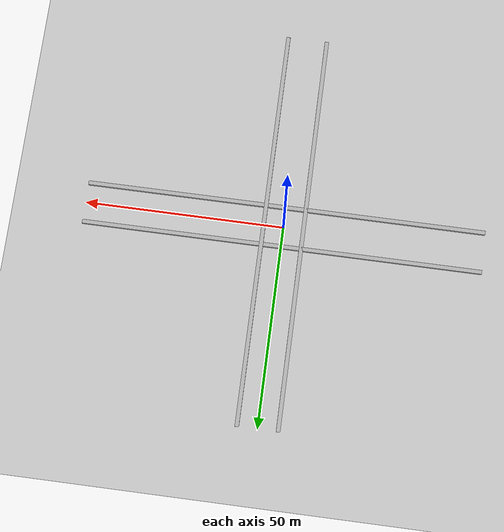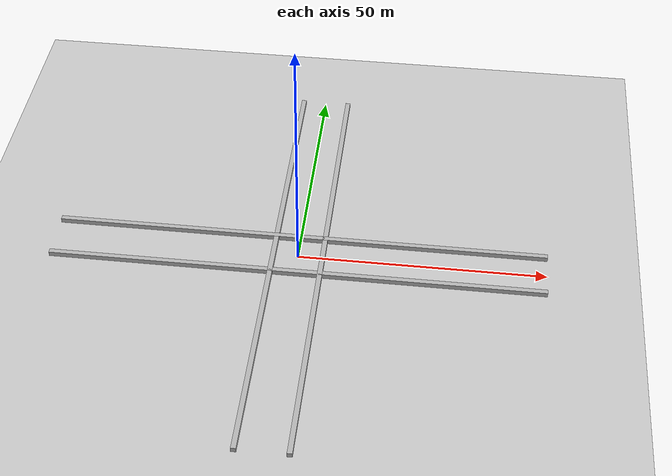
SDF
<?xml version="1.0" ?>
<sdf version="1.4">
	<world name="default">
		<include>
			<uri>model://ground_plane</uri>
		</include>

		<!-- Light source -->
		<include>
			<uri>model://sun</uri>
		</include>

		<model name="box">
			<static>true</static>
			<link name="link0">
				<pose>5.0 0 0.5 0 0 0</pose>
				<visual name="visual">
					<geometry>
						<box>
							<size>1 100 1</size>
						</box>
					</geometry>
				</visual>
				<collision name="collision">
					<geometry>
						<box>
							<size>1 100 1</size>
						</box>
					</geometry>
				</collision>
			</link>
			<link name="link1">
				<pose>0.0 5.0 0.5 0 0 1.57</pose>
				<visual name="visual">
					<geometry>
						<box>
							<size>1 100 1</size>
						</box>
					</geometry>
				</visual>
				<collision name="collision">
					<geometry>
						<box>
							<size>1 100 1</size>
						</box>
					</geometry>
				</collision>
			</link>
			<link name="link2">
				<pose>-5.0 0 0.5 0 0 0</pose>
				<visual name="visual">
					<geometry>
						<box>
							<size>1 100 1</size>
						</box>
					</geometry>
				</visual>
				<collision name="collision">
					<geometry>
						<box>
							<size>1 100 1</size>
						</box>
					</geometry>
				</collision>
			</link>
			<link name="link3">
				<pose>0.0 -5.0 0.5 0 0 1.57</pose>
				<visual name="visual">
					<geometry>
						<box>
							<size>1 100 1</size>
						</box>
					</geometry>
				</visual>
				<collision name="collision">
					<geometry>
						<box>
							<size>1 100 1</size>
						</box>
					</geometry>
				</collision>
			</link>
		</model>

		<!-- World camera -->
		<gui fullscreen='0'>
			<camera name='world_camera'>
				<pose>4.927360 -4.376610 3.740080 0.000000 0.275643 2.356190</pose>
				<view_controller>orbit</view_controller>
			</camera>
		</gui>

	</world>
</sdf>
